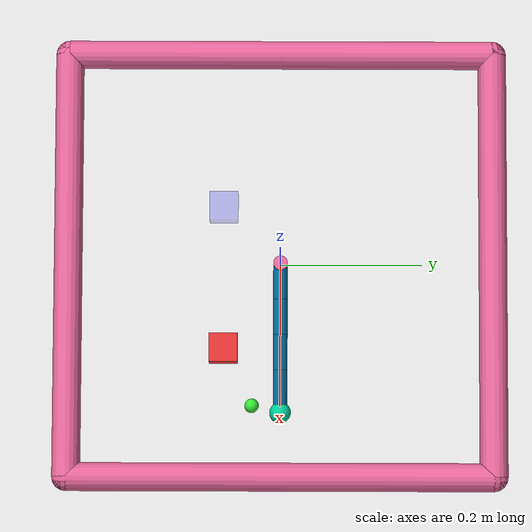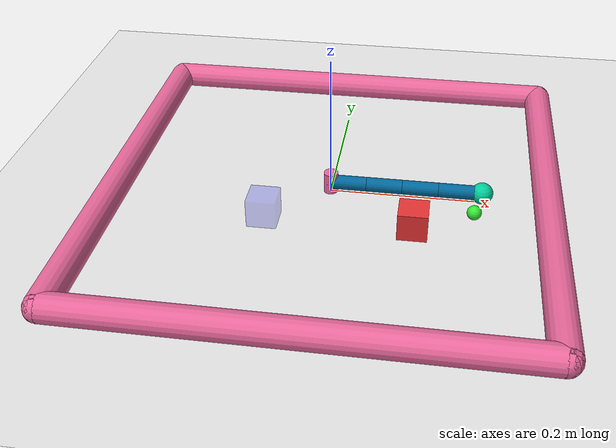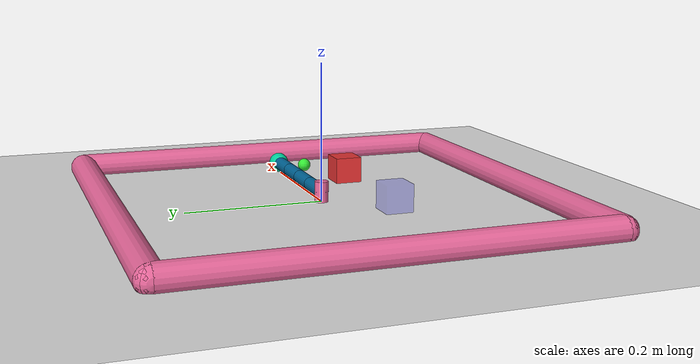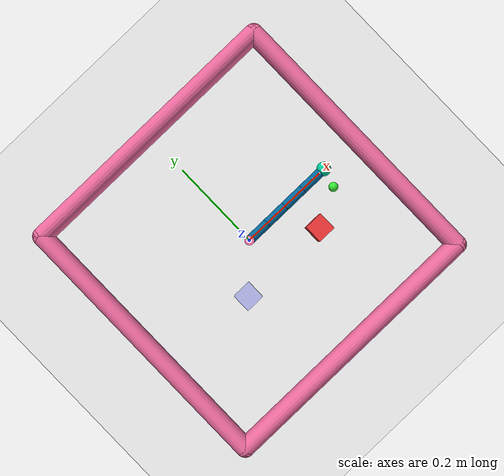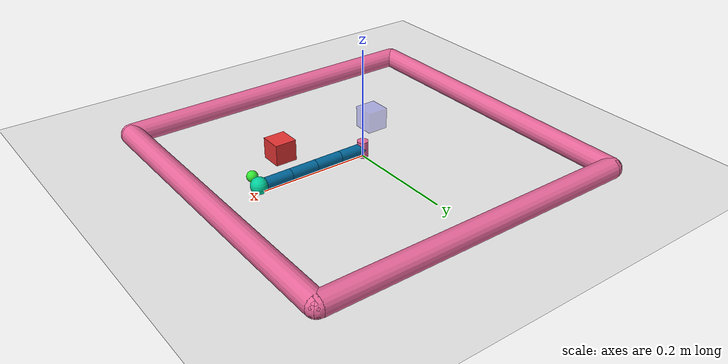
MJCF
<mujoco model="reacher">
	<compiler angle="radian" inertiafromgeom="true"/>
	<default>
		<joint armature="1" damping="1" limited="true"/>
		<geom friction="1 0.1 0.1" contype="0" conaffinity="0" rgba="0.7 0.7 0 1"/>
	</default>
	<option gravity="0 0 -9.81" integrator="RK4" timestep="0.01"/>
	<worldbody>
		<!-- Arena -->
		<geom conaffinity="1" name="ground" pos="0 0 0" rgba="0.9 0.9 0.9 1" size="1 1 10" type="plane"/>
		<geom conaffinity="0" fromto="-.3 -.3 .01 .3 -.3 .01" name="sideS" rgba="0.9 0.4 0.6 1" size=".02" type="capsule"/>
		<geom conaffinity="0" fromto=" .3 -.3 .01 .3  .3 .01" name="sideE" rgba="0.9 0.4 0.6 1" size=".02" type="capsule"/>
		<geom conaffinity="0" fromto="-.3  .3 .01 .3  .3 .01" name="sideN" rgba="0.9 0.4 0.6 1" size=".02" type="capsule"/>
		<geom conaffinity="0" fromto="-.3 -.3 .01 -.3 .3 .01" name="sideW" rgba="0.9 0.4 0.6 1" size=".02" type="capsule"/>
		<!-- Arm -->
		<geom conaffinity="1" fromto="0 0 0 0 0 0.03" name="root" rgba="0.9 0.4 0.6 1" size=".01" type="cylinder"/>
		<body name="body0" pos="0 0 .015">
			<geom fromto="0 0 0 0.05 0 0" name="link0" rgba="0.0 0.4 0.6 1" size=".01" type="capsule"/>
			<joint axis="0 0 1" limited="false" name="joint0" pos="0 0 0" type="hinge"/>
			<body name="body1" pos="0.05 0 0">
				<joint axis="0 0 1" limited="true" name="joint1" pos="0 0 0" range="-2.0 2.0" type="hinge"/>
				<geom fromto="0 0 0 0.05 0 0" name="link1" rgba="0.0 0.4 0.6 1" size=".01" type="capsule"/>
				<body name="body2" pos="0.05 0 0">
					<joint axis="0 0 1" limited="true" name="joint2" pos="0 0 0" range="-2.0 2.0" type="hinge"/>
					<geom fromto="0 0 0 0.05 0 0" name="link2" rgba="0.0 0.4 0.6 1" size=".01" type="capsule"/>
                    <body name="body3" pos="0.05 0 0">
                    	<joint axis="0 0 1" limited="true" name="joint3" pos="0 0 0" range="-2.0 2.0" type="hinge"/>
					    <geom fromto="0 0 0 0.05 0 0" name="link3" rgba="0.0 0.4 0.6 1" size=".01" type="capsule"/>
                        <body name="fingertip" pos="0.06 0 0">
						    <geom conaffinity="1" contype="1" name="fingertip" pos="0 0 0" rgba="0.0 0.8 0.6 1" size=".015" type="sphere"/>
					    </body>
                    </body>

				</body>
			</body>
		</body>
		<!-- Target -->
		<body name="dest" pos="-0.08 -0.08 0.02">
      		<geom conaffinity="0" contype="0" name="dest" pos="0 0 0" rgba="0.2 0.2 0.9 0.3" size=".02 .02 .02" type="box"/>
    	</body>

		<body name="target" pos="0.12 -0.08 .018">
			<joint armature="0" axis="1 0 0" damping="0" limited="true" name="target_x" pos="0 0 0" range="-.27 .27" ref="0.12" stiffness="0" type="slide"/>
			<joint armature="0" axis="0 1 0" damping="0" limited="true" name="target_y" pos="0 0 0" range="-.27 .27" ref="-.08" stiffness="0" type="slide"/>
			<geom conaffinity="0" contype="1" name="target" pos="0 0 0" rgba="0.9 0.2 0.2 1" size=".02 .02 .02" mass="0.01" type="box"/>
		</body>

		<body name="highlevel" pos="0.2 -0.04 0.01">
      		<geom conaffinity="0" contype="0" name="highlevel" pos="0 0 0" rgba="0.2 0.9 0.2 1" size=".01" type="sphere"/>
    	</body>

	</worldbody>
	<actuator>
		<motor ctrllimited="true" ctrlrange="-0.5 0.5" gear="100.0" joint="joint0" forcelimited="true" forcerange="-0.1 0.1"/>
		<motor ctrllimited="true" ctrlrange="-0.5 0.5" gear="100.0" joint="joint1" forcelimited="true" forcerange="-0.1 0.1"/>
		<motor ctrllimited="true" ctrlrange="-0.5 0.5" gear="100.0" joint="joint2" forcelimited="true" forcerange="-0.1 0.1"/>
        <motor ctrllimited="true" ctrlrange="-0.5 0.5" gear="100.0" joint="joint3" forcelimited="true" forcerange="-0.1 0.1"/>
	</actuator>
</mujoco>
